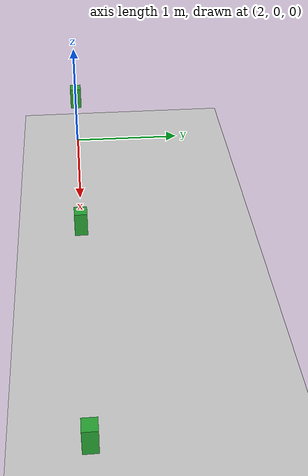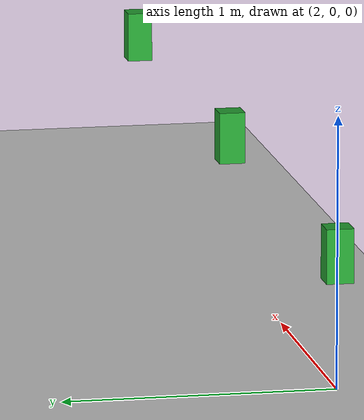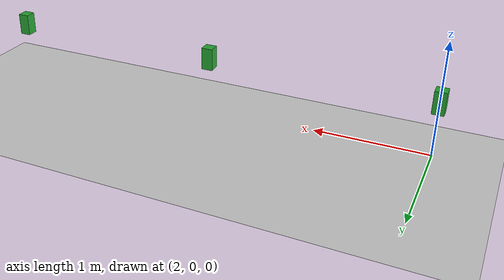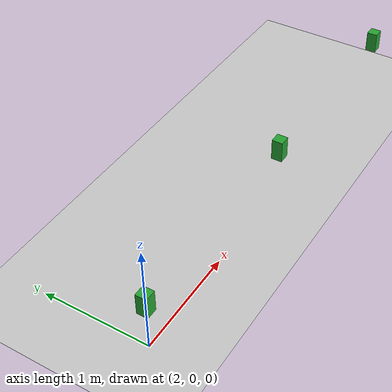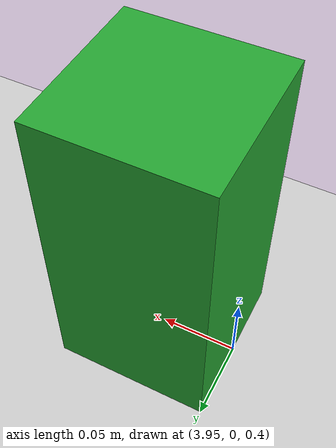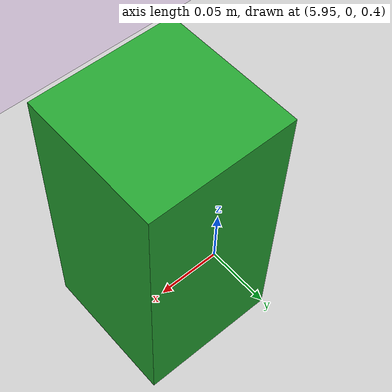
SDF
<?xml version="1.0" ?>
<sdf version="1.5">
  <world name="default">
    <!-- A global light source -->
    <include>
      <uri>model://sun</uri>
    </include>
    <!-- A ground plane -->
    <include>
      <uri>model://ground_plane</uri>
    </include>
    <include>
      <uri>model://asphalt_plane</uri>
    </include>
    <physics name='default_physics' default='0' type='ode'>
      <gravity>0 0 -9.8066</gravity>
      <ode>
        <solver>
          <type>quick</type>
          <iters>10</iters>
          <sor>1.3</sor>
          <use_dynamic_moi_rescaling>0</use_dynamic_moi_rescaling>
        </solver>
        <constraints>
          <cfm>0</cfm>
          <erp>0.2</erp>
          <contact_max_correcting_vel>100</contact_max_correcting_vel>
          <contact_surface_layer>0.001</contact_surface_layer>
        </constraints>
      </ode>
      <max_step_size>0.004</max_step_size>
      <real_time_factor>1</real_time_factor>
      <real_time_update_rate>250</real_time_update_rate>
      <magnetic_field>6.0e-6 2.3e-5 -4.2e-5</magnetic_field>
    </physics>

    <model name="node_one">
      <pose>2 0 0.5 0 0 0</pose>
      <link name="link">
        <collision name="collision">
          <geometry>
            <box>
              <size>0.1 0.1 0.2</size>
            </box>
          </geometry>
        </collision>

        <visual name="visual">
          <geometry>
            <box>
              <size>0.1 0.1 0.2</size>
            </box>
          </geometry>
          <material>
            <script>
              <name>Gazebo/Green</name>
            </script>
          </material>
        </visual>
      </link>

      <plugin name="gazebo_ground_node_plugin" filename="libgazebo_ground_node_plugin.so">
        <robotNamespace/>
        <nodeID>1</nodeID>
      </plugin>
    </model>
    <model name="node_two">
      <pose>4 0 0.5 0 0 0</pose>
      <link name="link">
        <collision name="collision">
          <geometry>
            <box>
              <size>0.1 0.1 0.2</size>
            </box>
          </geometry>
        </collision>

        <visual name="visual">
          <geometry>
            <box>
              <size>0.1 0.1 0.2</size>
            </box>
          </geometry>
          <material>
            <script>
              <name>Gazebo/Green</name>
            </script>
          </material>
        </visual>
      </link>

      <plugin name="gazebo_ground_node_plugin" filename="libgazebo_ground_node_plugin.so">
        <robotNamespace/>
        <nodeID>2</nodeID>
      </plugin>
    </model>
    <model name="node_three">
      <pose>6 0 0.5 0 0 0</pose>
      <link name="link">
        <collision name="collision">
          <geometry>
            <box>
              <size>0.1 0.1 0.2</size>
            </box>
          </geometry>
        </collision>

        <visual name="visual">
          <geometry>
            <box>
              <size>0.1 0.1 0.2</size>
            </box>
          </geometry>
          <material>
            <script>
              <name>Gazebo/Green</name>
            </script>
          </material>
        </visual>
      </link>

      <plugin name="gazebo_ground_node_plugin" filename="libgazebo_ground_node_plugin.so">
        <robotNamespace/>
        <nodeID>3</nodeID>
      </plugin>
    </model>
  </world>
</sdf>
